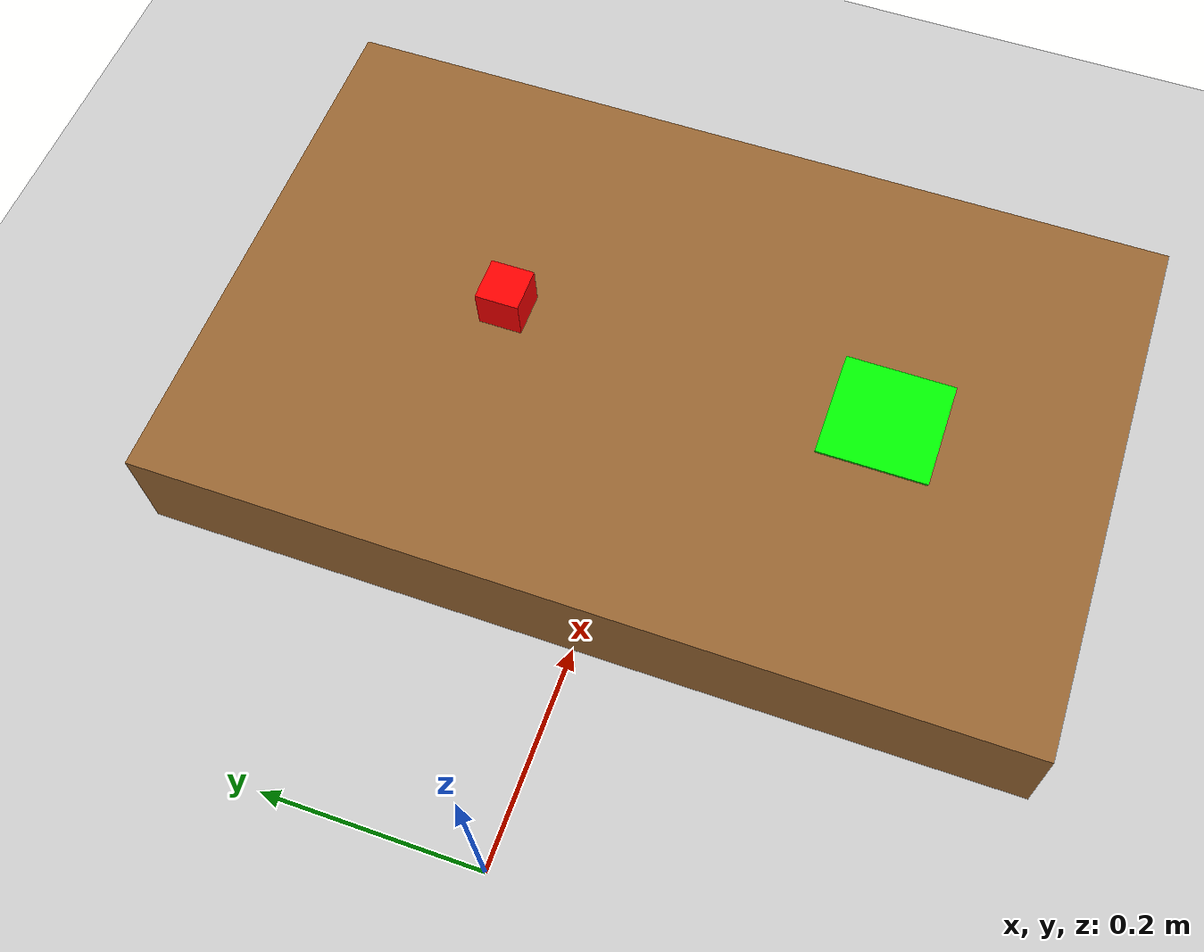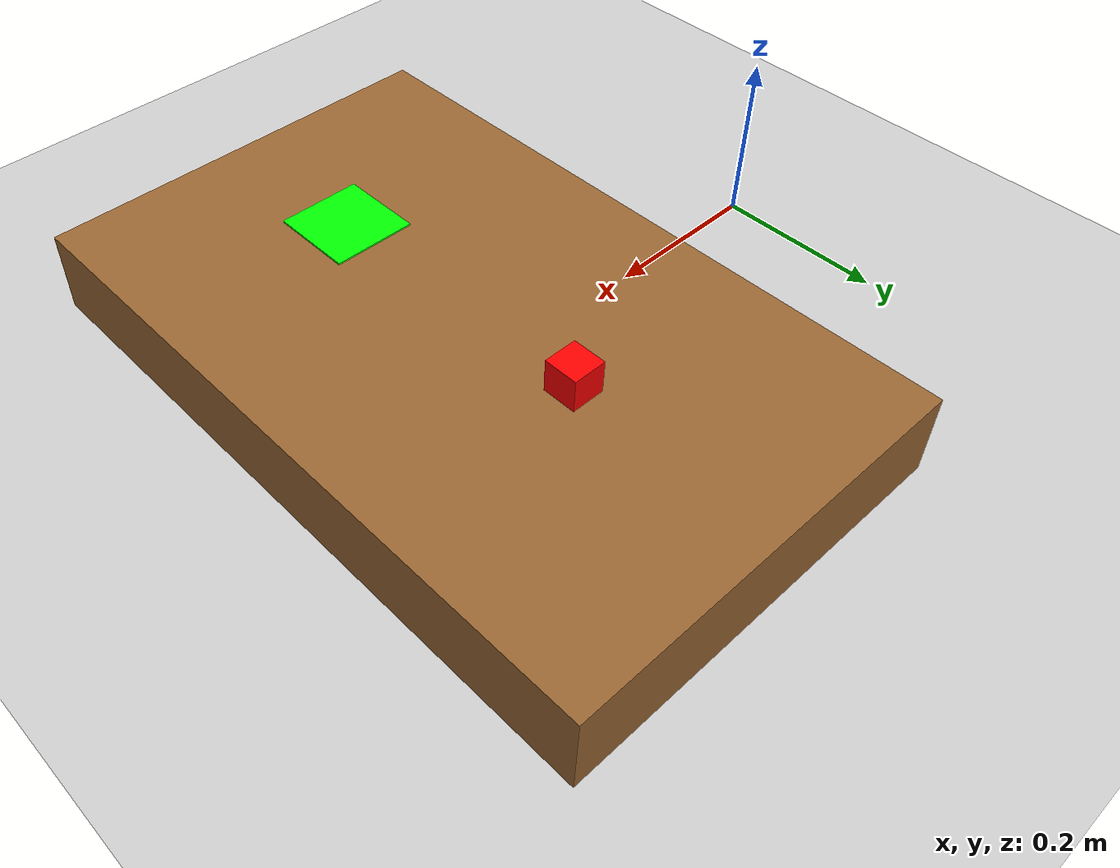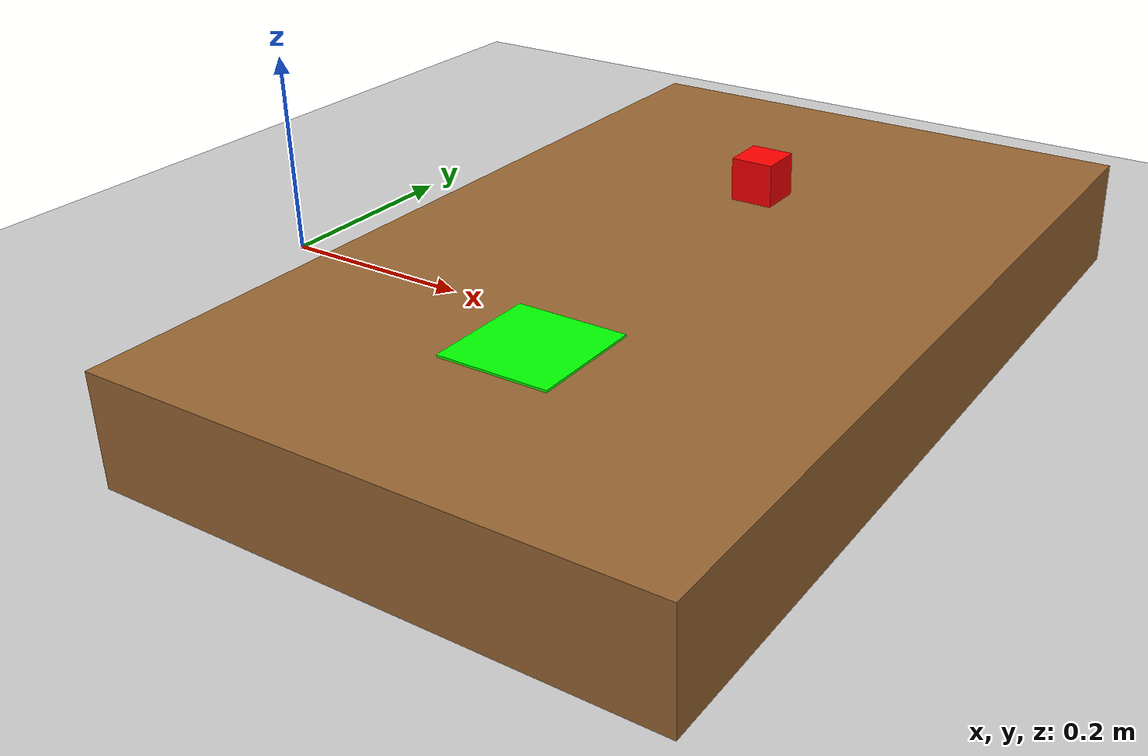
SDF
<?xml version="1.0" ?>
<sdf version="1.6">
  <world name="pick_place_world">
    <include><uri>model://ground_plane</uri></include>
    <include><uri>model://sun</uri></include>

    <!-- Table: a 0.1 m tall box. Its TOP surface is at z = 0.10 -->
    <!-- (pose z = 0.05 is the box center, +/- 0.05 half-height).  -->
    <model name="table">
      <static>true</static>
      <pose>0.45 0 0.05 0 0 0</pose>
      <link name="link">
        <collision name="c"><geometry><box><size>0.5 0.8 0.1</size></box></geometry></collision>
        <visual name="v">
          <geometry><box><size>0.5 0.8 0.1</size></box></geometry>
          <material><ambient>0.6 0.4 0.2 1</ambient><diffuse>0.6 0.4 0.2 1</diffuse></material>
        </visual>
      </link>
    </model>

    <!-- Graspable red box (0.04 cube). Rest it ON the table: table top -->
    <!-- is z=0.10, half the cube is 0.02, so center z = 0.12. This way -->
    <!-- it sits still instead of falling. -->
    <model name="target_object">
      <pose>0.45 0.15 0.12 0 0 0</pose>
      <link name="link">
        <inertial>
          <mass>0.05</mass>
          <inertia><ixx>1e-5</ixx><iyy>1e-5</iyy><izz>1e-5</izz><ixy>0</ixy><ixz>0</ixz><iyz>0</iyz></inertia>
        </inertial>
        <collision name="c">
          <geometry><box><size>0.04 0.04 0.04</size></box></geometry>
          <surface>
            <friction><ode><mu>1.0</mu><mu2>1.0</mu2></ode></friction>
          </surface>
        </collision>
        <visual name="v">
          <geometry><box><size>0.04 0.04 0.04</size></box></geometry>
          <material><ambient>1 0 0 1</ambient><diffuse>1 0 0 1</diffuse></material>
        </visual>
      </link>
    </model>

    <!-- Drop location marker (green pad on the table, no collision). -->
    <model name="drop_marker">
      <static>true</static>
      <pose>0.45 -0.2 0.101 0 0 0</pose>
      <link name="link">
        <visual name="v">
          <geometry><box><size>0.1 0.1 0.002</size></box></geometry>
          <material><ambient>0 1 0 1</ambient><diffuse>0 1 0 1</diffuse></material>
        </visual>
      </link>
    </model>
  </world>
</sdf>
